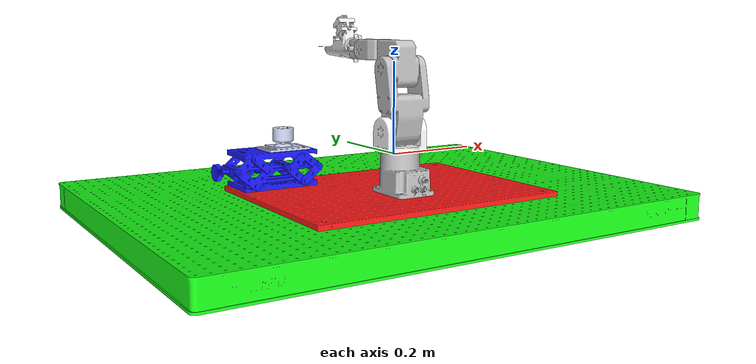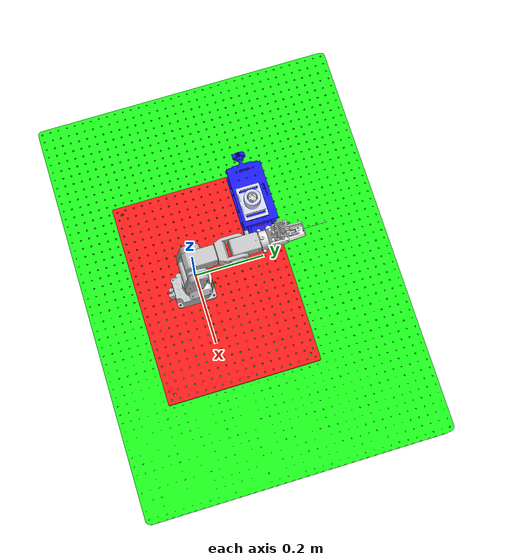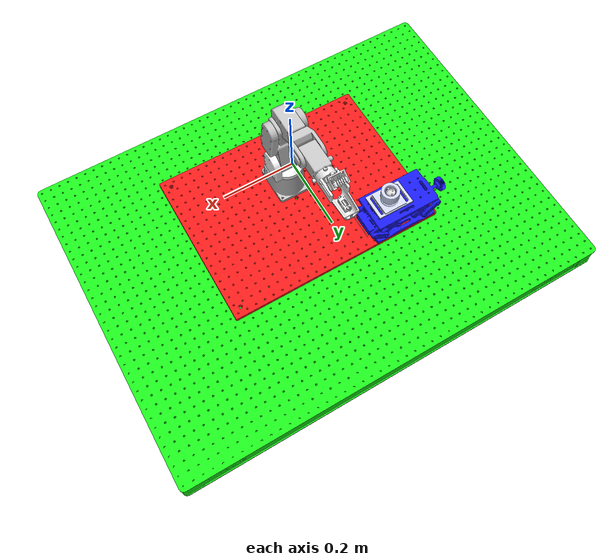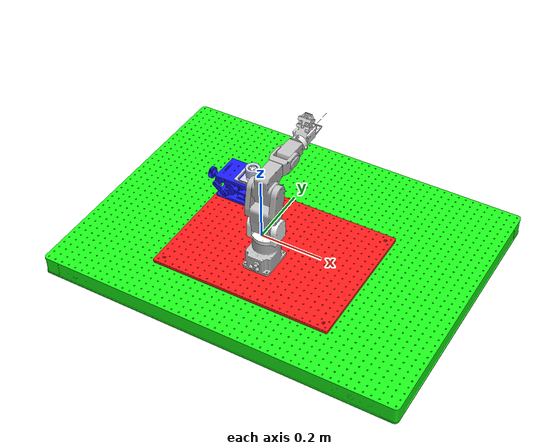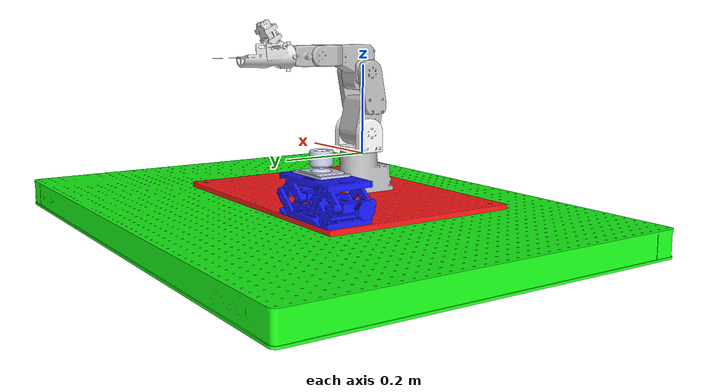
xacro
<?xml version="1.0"?>
<robot xmlns:xacro="http://www.ros.org/wiki/xacro" name="meca_standalone">

    <xacro:include filename="Meca500_urdf.urdf" />
    <xacro:meca500_robot />

    <link name="world"/>

    <link name="Optical_breadboard4560">
        <visual>
            <origin xyz="0 0 0" rpy="1.5708 0 0" />
            <geometry>
                <mesh filename="Optical_breadboard4560.STL" scale="0.001 0.001 0.001"/>
            </geometry>
            <material name="black">
                <color rgba="1 0.1 0.1 1"/>
            </material>
        </visual>
        <collision>
            <origin xyz="0 0 0" rpy="1.5708 0 0" />
            <geometry>
                 <mesh filename="Optical_breadboard4560.STL" scale="0.001 0.001 0.001"/>
            </geometry>
        </collision>
        <inertial>
            <mass value="0.2" /> <inertia ixx="0.001" ixy="0" ixz="0" iyy="0.001" iyz="0" izz="0.001" />
        </inertial>
    </link>
    <joint name="Optical_breadboard4560" type="fixed">
      <parent link="world"/>
      <child link="Optical_breadboard4560"/>
      <origin xyz="-0.575 0.275 -0.1" rpy="0 0.0 0"/>
    </joint>

    <link name="Optical_tabel90120">
        <visual>
            <origin xyz="0 0 0" rpy="1.5708 0 0" />
            <geometry>
                <mesh filename="Optical_tabel90120.STL" scale="0.001 0.001 0.001"/>
            </geometry>
            <material name="black">
                <color rgba="0.1 1 0.1 1"/>
            </material>
        </visual>
        <collision>
            <origin xyz="0 0 0" rpy="1.5708 0 0" />
            <geometry>
                 <mesh filename="Optical_tabel90120.STL" scale="0.001 0.001 0.001"/>
            </geometry>
        </collision>
        <inertial>
            <mass value="0.2" /> <inertia ixx="0.001" ixy="0" ixz="0" iyy="0.001" iyz="0" izz="0.001" />
        </inertial>
    </link>
    <joint name="Optical_tabel90120" type="fixed">
      <parent link="Optical_breadboard4560"/>
      <child link="Optical_tabel90120"/>
      <origin xyz="-0.1 0.3 -0.13" rpy="0 0.0 0"/>
    </joint>

    <link name="Optical_plate">
        <visual>
            <origin xyz="0 0 0" rpy="1.5708 0 0" />
            <geometry>
                <mesh filename="Optical_plate.STL" scale="0.001 0.001 0.001"/>
            </geometry>
            <material name="black">
                <color rgba="0.1 0.1 1 1"/>
            </material>
        </visual>
        <collision>
            <origin xyz="0 0 0" rpy="1.5708 0 0" />
            <geometry>
                 <mesh filename="Optical_plate.STL" scale="0.001 0.001 0.001"/>
            </geometry>
        </collision>
        <inertial>
            <mass value="0.2" /> <inertia ixx="0.001" ixy="0" ixz="0" iyy="0.001" iyz="0" izz="0.001" />
        </inertial>
    </link>
    <joint name="Optical_plate" type="fixed">
      <parent link="Optical_breadboard4560"/>
      <child link="Optical_plate"/>
      <origin xyz="0.25 0 0.012" rpy="0 0.0 0"/>
    </joint>

    <link name="Trocar_plate">
        <inertial>
        <origin xyz="-0.010284 0.0012129 -0.024908" rpy="0 0 0" />
        <mass value="0.030295" />
        <inertia ixx="1.5333E-05" ixy="-4.7674E-22" ixz="-4.3837E-22" iyy="2.53E-05" iyz="-1.0486E-19" izz="4.0328E-05" />
        </inertial>
        <visual>
        <origin xyz="0 0 0" rpy="0 0 0" />
        <geometry>
            <mesh filename="Trocar_plate.STL" />
        </geometry>
        <material name="">
            <color rgba="0.79216 0.81961 0.93333 1" />
        </material>
        </visual>
        <collision>
        <origin xyz="0 0 0" rpy="0 0 0" />
        <geometry>
            <mesh filename="Trocar_plate.STL" />
        </geometry>
        </collision>
    </link>
    <joint name="Trocar_plate" type="fixed">
      <parent link="Optical_plate"/>
      <child link="Trocar_plate"/>
      <origin xyz="0.175 -0.06 0.1115" rpy="-1.5708 0.0 0.0"/>
    </joint>

    <link name="Trocar_cover">
        <inertial>
        <origin xyz="0 2.1684E-19 0.0031894" rpy="0 0 0" />
        <mass value="0.051623" />
        <inertia ixx="1.8441E-05" ixy="-6.6852E-38" ixz="-1.2085E-22" iyy="1.8441E-05" iyz="-1.0609E-38" izz="1.698E-05" />
        </inertial>
        <visual>
        <origin xyz="0 0 0" rpy="0 0 0" />
        <geometry>
            <mesh filename="Trocar_cover.STL" />
        </geometry>
        <material name="">
            <color rgba="0.79216 0.81961 0.93333 1" />
        </material>
        </visual>
        <collision>
        <origin xyz="0 0 0" rpy="0 0 0" />
        <geometry>
            <mesh filename="Trocar_cover.STL" />
        </geometry>
        </collision>
    </link>
    <joint name="Cover" type="revolute">
        <origin xyz="-0.010284 0.006 0.0012129" rpy="1.5708 0 0" />
        <parent link="Trocar_plate" />
        <child link="Trocar_cover" />
        <axis xyz="0 0 1" />
        <limit lower="0" upper="0" effort="0" velocity="0" />
    </joint>

    <link name="Trocar_gripper">
        <inertial>
        <origin xyz="6.15921593302357E-08 0.00866204485646013 -8.45455101743803E-08" rpy="0 0 0" />
        <mass value="0.000465099979144033" />
        <inertia ixx="4.62973137158684E-08" ixy="-3.59081407708454E-13" ixz="-2.4218954980201E-18" iyy="4.54118427502853E-08" iyz="4.83325739784747E-13" izz="4.62973137174286E-08" />
        </inertial>
        <visual>
        <origin xyz="0 0 0" rpy="0 0 0" />
        <geometry>
            <mesh filename="Trocar_gripper.STL" />
        </geometry>
        <material name="">
            <color rgba="0.792156862745098 0.819607843137255 0.933333333333333 1" />
        </material>
        </visual>
        <collision>
        <origin xyz="0 0 0" rpy="0 0 0" />
        <geometry>
            <mesh filename="Trocar_gripper.STL" />
        </geometry>
        </collision>
    </link>
    <joint name="gripper" type="revolute">
        <origin xyz="0 0 0.005" rpy="1.5708 0 1.2559" />
        <parent link="Trocar_cover" />
        <child link="Trocar_gripper" />
        <axis xyz="0 1 0" />
        <limit lower="0" upper="0" effort="0" velocity="0" />
    </joint>

    <link name="Eye_phantom">
        <inertial>
        <origin xyz="-0.012472312239797 -1.50679048680994E-05 -2.58139816005937E-05" rpy="0 0 0" />
        <mass value="0.00166355152381348" />
        <inertia ixx="1.67706142981398E-07" ixy="2.68078790732605E-10" ixz="-3.60065214288737E-10" iyy="1.50535164162634E-07" iyz="-2.37123987209198E-12" izz="1.51037126333486E-07" />
        </inertial>
        <visual>
        <origin xyz="0 0 0" rpy="0 0 0" />
        <geometry>
            <mesh filename="Eye_phantom.STL" />
        </geometry>
        <material name="">
            <color rgba="1 1 1 1" />
        </material>
        </visual>
        <collision>
        <origin xyz="0 0 0" rpy="0 0 0" />
        <geometry>
            <mesh filename="Eye_phantom.STL" />
        </geometry>
        </collision>
    </link>
    <joint name="Eye_phantom" type="revolute">
        <origin xyz="0 0 0" rpy="0.5 0.0 -1.5708" />
        <parent link="Trocar_gripper" />
        <child link="Eye_phantom" />
        <axis xyz="1 0 0" />
        <limit lower="0" upper="0" effort="0" velocity="0" />
    </joint>

    <link name="Eye_trocar">
        <inertial>
        <origin xyz="0 3.03576608295941E-18 0.00446798310326308" rpy="0 0 0" />
        <mass value="7.447930783498E-06" />
        <inertia ixx="7.4544848639307E-12" ixy="-1.0097419586829E-28" ixz="-6.86624531904369E-27" iyy="7.4544848639307E-12" iyz="2.72630328844382E-27" izz="5.94805100211937E-12" />
        </inertial>
        <visual>
        <origin xyz="0 0 0" rpy="0 0 0" />
        <geometry>
            <mesh filename="Eye_trocar.STL" />
        </geometry>
        <material name="">
            <color rgba="0.717647058823529 0.254901960784314 0 1" />
        </material>
        </visual>
        <collision>
        <origin xyz="0 0 0" rpy="0 0 0" />
        <geometry>
            <mesh filename="Eye_trocar.STL" />
        </geometry>
        </collision>
    </link>
    <joint name="Eye_trocar" type="revolute">
        <origin xyz="-0.018742 -3.9168E-05 0.0062012" rpy="0.2922 -0.64361 -0.45715" />
        <parent link="Eye_phantom" />
        <child link="Eye_trocar" />
        <axis xyz="0 0 1" />
        <limit lower="0" upper="0" effort="0" velocity="0" />
    </joint>

    <link name="260107_Total_assembly">
        <visual>
            <origin xyz="0 0 0" rpy="1.5708 0 0" />
            <geometry>
                <mesh filename="260107_Total_assembly_simplified.STL" scale="0.001 0.001 0.001"/>
            </geometry>
            <material name="black">
                <color rgba="0.9 0.9 0.9 1"/>
            </material>
        </visual>
        <collision>
            <origin xyz="0 0 0" rpy="1.5708 0 0" />
            <geometry>
                 <mesh filename="260107_Total_assembly_simplified.STL" scale="0.001 0.001 0.001"/>
            </geometry>
        </collision>
        <inertial>
            <mass value="0.2" /> <inertia ixx="0.001" ixy="0" ixz="0" iyy="0.001" iyz="0" izz="0.001" />
        </inertial>
    </link>
    <joint name="260107_Total_assembly" type="fixed">
      <parent link="6_Link"/>
      <child link="260107_Total_assembly"/>
      <origin xyz="0.105 -0.0325 0.0" rpy="1.5708 0.0 3.1416"/>
    </joint>

    <joint name="world_to_base" type="fixed">
        <parent link="world"/>
        <child link="base_link"/>
        <origin xyz="0 0 0" rpy="0 0 0"/>
    </joint>
</robot>

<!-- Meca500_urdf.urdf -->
<robot name="Meca500_urdf" xmlns:xacro="http://www.ros.org/wiki/xacro">
  <xacro:macro name="meca500_robot">
    <link name="base_link">
      <inertial>
        <origin xyz="0.0155742096146599 -0.045875694367467 0.0105063591743089" rpy="0 0 0" />
        <mass value="0.701975266012108" />
        <inertia ixx="0.00104999968536769" ixy="5.67451323688377E-08" ixz="-1.42053140449248E-06" iyy="0.000980207556335173" iyz="9.2922850615505E-05" izz="0.000826340578047908" />
      </inertial>
      <visual>
        <origin xyz="0 0 0.0" rpy="0 0 0" />
        <geometry>
          <mesh filename="base_link.STL" />
        </geometry>
        <material name="">
          <color rgba="0.749019607843137 0.749019607843137 0.749019607843137 1" />
        </material>
      </visual>
      <collision>
        <origin xyz="0 0 -0.02" rpy="0 0 0" />
        <geometry>
          <cylinder radius="0.046" length="0.04" />
        </geometry>
      </collision>
    </link>

    <link name="1_Link">
      <inertial>
        <origin xyz="0.0265829372353597 8.6108726099841E-07 0.0187309247071563" rpy="0 0 0" />
        <mass value="0.00110681313497636" />
        <inertia ixx="5.67802800750714E-09" ixy="-6.25280505779623E-13" ixz="2.07136842387982E-13" iyy="2.52736130363855E-08" iyz="3.97946980050579E-15" izz="2.52755748182286E-08" />
      </inertial>
      <visual>
        <origin xyz="0 0 0" rpy="0 0 0" />
        <geometry>
          <mesh filename="1_Link.STL" />
        </geometry>
        <material name="">
          <color rgba="0.996078431372549 0.996078431372549 1 1" />
        </material>
      </visual>
      <collision>
        <origin xyz="0 0 0" rpy="0 0 0" />
        <geometry>
          <mesh filename="1_Link.STL" />
        </geometry>
      </collision>
    </link>
    <joint name="1" type="revolute">
      <origin xyz="0.015543 0 -0.0046218" rpy="0 0 0" />
      <parent link="base_link" />
      <child link="1_Link" />
      <axis xyz="0 0 1" />
      <limit lower="-3.0543" upper="3.0543" effort="10.0" velocity="2.6180" />
    </joint>

    <link name="2_Link">
      <inertial>
        <origin xyz="-0.011581 0.060433 0.025598" rpy="0 0 0" />
        <mass value="0.0014997" />
        <inertia ixx="4.1007E-08" ixy="2.5363E-14" ixz="-9.3123E-13" iyy="4.1011E-08" iyz="5.6892E-13" izz="4.3707E-09" />
      </inertial>
      <visual>
        <origin xyz="0 0 0" rpy="0 0 0" />
        <geometry>
          <mesh filename="2_Link.STL" />
        </geometry>
        <material name="">
          <color rgba="0.74902 0.74902 0.74902 1" />
        </material>
      </visual>
      <collision>
        <origin xyz="0 0 0" rpy="0 0 0" />
        <geometry>
          <mesh filename="2_Link.STL" />
        </geometry>
      </collision>
    </link>
    <joint name="2" type="revolute">
      <origin xyz="0 0 0.054" rpy="1.5708 0 1.5708" />
      <parent link="1_Link" />
      <child link="2_Link" />
      <axis xyz="0 0 1" />
      <limit lower="-1.2217" upper="1.5708" effort="10.0" velocity="2.6180" />
    </joint>

    <link name="3_Link">
      <inertial>
        <origin xyz="0.00863474322368168 0.0130792726165944 0.000472372386690102" rpy="0 0 0" />
        <mass value="0.369857547820667" />
        <inertia ixx="0.000364951500986559" ixy="-6.79152264832734E-05" ixz="1.58659979825393E-06" iyy="0.000274459344759578" iyz="5.11361040289315E-06" izz="0.000449724288974004" />
      </inertial>
      <visual>
        <origin xyz="0 0 0" rpy="0 0 0" />
        <geometry>
          <mesh filename="3_Link.STL" />
        </geometry>
        <material name="">
          <color rgba="0.749019607843137 0.749019607843137 0.749019607843137 1" />
        </material>
      </visual>
      <collision>
        <origin xyz="0 0 0" rpy="0 0 0" />
        <geometry>
          <mesh filename="3_Link.STL" />
        </geometry>
      </collision>
    </link>
    <joint name="3" type="revolute">
      <origin xyz="0 0.135 0" rpy="0 0 0" />
      <parent link="2_Link" />
      <child link="3_Link" />
      <axis xyz="0 0 1" />
      <limit lower="-2.3562" upper="1.2217" effort="10.0" velocity="3.1416" />
    </joint>

    <link name="4_Link">
      <inertial>
        <origin xyz="0.0268017397762453 3.8050478860796E-06 -0.0386580641288729" rpy="0 0 0" />
        <mass value="5.4551423036358E-05" />
        <inertia ixx="6.19250472386076E-11" ixy="-6.6627251186149E-15" ixz="3.36952177502071E-14" iyy="4.37621105880679E-10" iyz="5.44000654518049E-15" izz="4.37369303303002E-10" />
      </inertial>
      <visual>
        <origin xyz="0 0 0" rpy="0 0 0" />
        <geometry>
          <mesh filename="4_Link.STL" />
        </geometry>
        <material name="">
          <color rgba="0.749019607843137 0.749019607843137 0.749019607843137 1" />
        </material>
      </visual>
      <collision>
        <origin xyz="0 0 0" rpy="0 0 0" />
        <geometry>
          <mesh filename="4_Link.STL" />
        </geometry>
      </collision>
    </link>
    <joint name="4" type="revolute">
      <origin xyz="0.0609985999996513 0.0380000639917407 0" rpy="0 -1.5707963267949 0" />
      <parent link="3_Link" />
      <child link="4_Link" />
      <axis xyz="0 0 1" />
      <limit lower="-2.9671" upper="2.9671" effort="10.0" velocity="5.2360" />
    </joint>

    <link name="5_Link">
      <inertial>
        <origin xyz="0.0205110139562634 2.54707156949197E-06 0.000506958591903185" rpy="0 0 0" />
        <mass value="0.16436203042711" />
        <inertia ixx="5.51456893060112E-05" ixy="8.28032699191258E-09" ixz="3.47996286604157E-06" iyy="0.000119500194381483" iyz="3.23812564504135E-09" izz="0.000115800437996737" />
      </inertial>
      <visual>
        <origin xyz="0 0 0" rpy="0 0 0" />
        <geometry>
          <mesh filename="5_Link.STL" />
        </geometry>
        <material name="">
          <color rgba="0.749019607843137 0.749019607843137 0.749019607843137 1" />
        </material>
      </visual>
      <collision>
        <origin xyz="0 0 0" rpy="0 0 0" />
        <geometry>
          <mesh filename="5_Link.STL" />
        </geometry>
      </collision>
    </link>
    <joint name="5" type="revolute">
      <origin xyz="0 0 -0.059" rpy="0 1.5707963267949 0" />
      <parent link="4_Link" />
      <child link="5_Link" />
      <axis xyz="0 0 1" />
      <limit lower="-2.0071" upper="2.0071" effort="10.0" velocity="5.2360" />
    </joint>

    <link name="6_Link">
      <inertial>
        <origin xyz="-4.93381640404023E-09 -3.06476243447373E-06 -0.0051537334161223" rpy="0 0 0" />
        <mass value="0.00318159115629491" />
        <inertia ixx="1.12761623790943E-07" ixy="1.20821854288624E-13" ixz="-7.10637835162442E-14" iyy="1.10034690670702E-07" iyz="-4.50963801973578E-11" izz="1.63299994669183E-07" />
      </inertial>
      <visual>
        <origin xyz="0 0 0" rpy="0 0 0" />
        <geometry>
          <mesh filename="6_Link.STL" />
        </geometry>
        <material name="">
          <color rgba="0.749019607843137 0.749019607843137 0.749019607843137 1" />
        </material>
      </visual>
      <collision>
        <origin xyz="0 0 0" rpy="0 0 0" />
        <geometry>
          <mesh filename="6_Link.STL" />
        </geometry>
      </collision>
    </link>
    <joint name="6" type="revolute">
      <origin xyz="0.059 0 0" rpy="0.0 -1.5707963267949 0" />
      <parent link="5_Link" />
      <child link="6_Link" />
      <axis xyz="0 0 1" />
      <limit lower="-6.2832" upper="6.2832" effort="10.0" velocity="8.7266" />
    </joint>
  </xacro:macro>
</robot>
